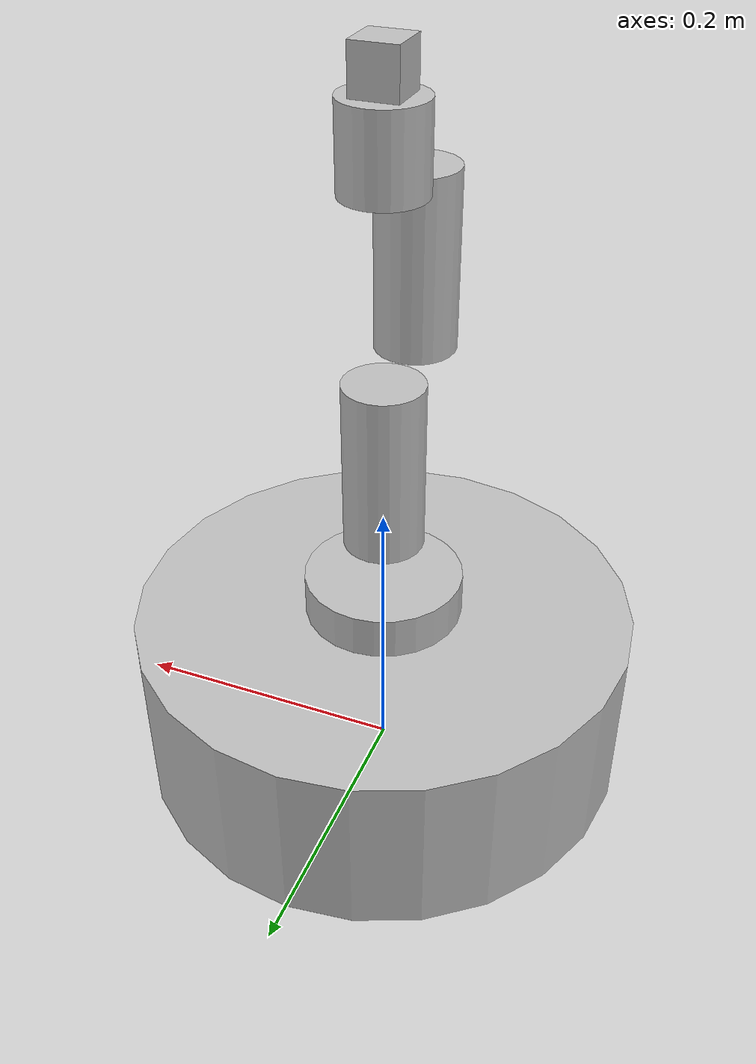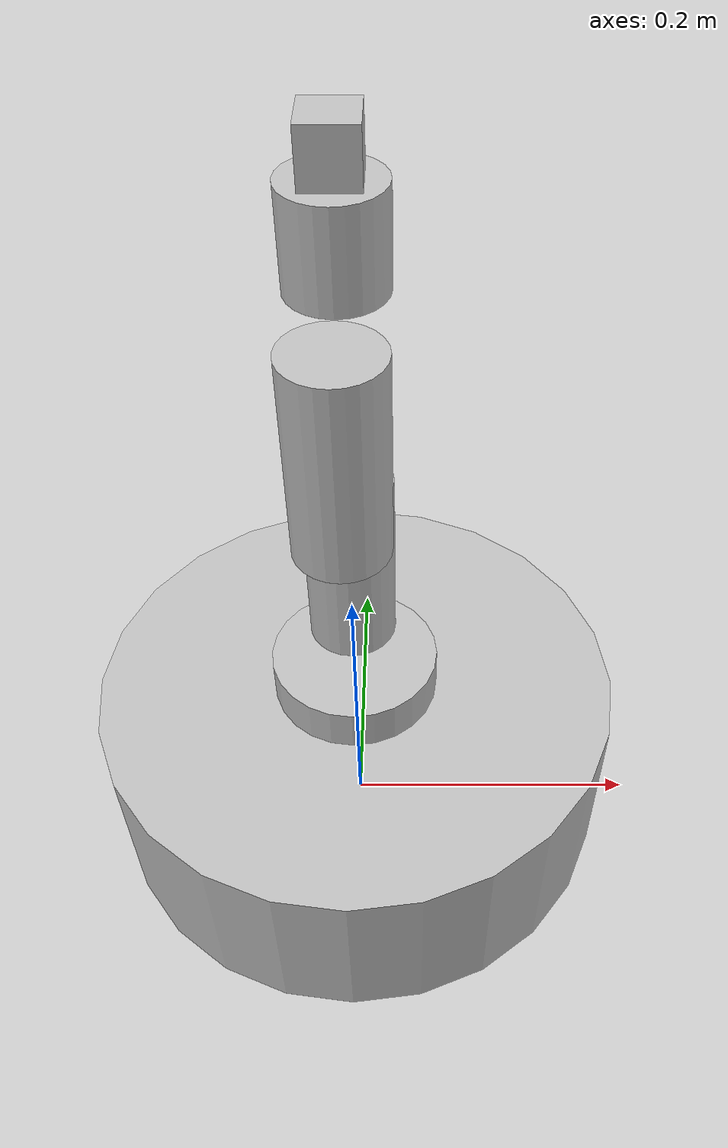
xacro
<?xml version="1.0"?>
<robot
	xmlns:xacro="http://www.ros.org/wiki/xacro"
	name="manipulator_model">

	<xacro:include filename="$(find manipulator_model)/xacro/inertia_macros.xacro" />
	<xacro:include filename="$(find manipulator_model)/xacro/transmission_macros.xacro" />

	<xacro:macro name="manipulator_model">
		<link name="world"/>
		<link name="rotate_moving_base">
			<inertial>
				<mass value="1.0"/>
				<origin rpy="0 0 0" xyz="0 0 0.0625"/>
				<xacro:cylinder_inertia mass="1" r="0.055" l="0.05" />
			</inertial>
		</link>
		<joint name="move_rotate" type="continuous">
			<axis xyz="0 0 1"/>
			<parent link="world"/>
			<child link="rotate_moving_base"/>
			<origin rpy="0 0 0" xyz="0.0 0.0 0.0"/>
		</joint>
		<link name="forward_moving_base">
			<inertial>
				<mass value="1.0"/>
				<origin rpy="0 0 0" xyz="0 0 0.0625"/>
				<xacro:cylinder_inertia mass="1" r="0.055" l="0.05" />
			</inertial>
		</link>
		<joint name="move_forward" type="prismatic">
			<axis xyz="1 0 0"/>
			<parent link="rotate_moving_base"/>
			<child link="forward_moving_base"/>
			<limit effort="1000.0" lower="-1" upper="1" velocity="0.5"/>
			<origin rpy="0 0 0" xyz="0.0 0.0 0.0"/>
		</joint>
		<joint name="fixed" type="fixed">
			<parent link="forward_moving_base"/>
			<child link="manipulator_base_link"/>
		</joint>
		<link name="manipulator_base_link">
			<visual>
				<geometry>
					<cylinder length="0.125" radius="0.175"/>
				</geometry>
				<material name="silver">
					<color rgba="0.75 0.75 0.75 1"/>
				</material>
				<origin rpy="0 0 0" xyz="0 0 0.0625"/>
			</visual>
			<collision>
				<geometry>
					<cylinder length="0.125" radius="0.175"/>
				</geometry>
				<origin rpy="0 0 0" xyz="0 0 0.0625"/>
			</collision>
			<inertial>
				<mass value="1.0"/>
				<origin rpy="0 0 0" xyz="0 0 0.0625"/>
				<xacro:cylinder_inertia mass="1" r="0.1" l="0.05" />
			</inertial>
		</link>
		<link name="turntable">
			<visual>
				<geometry>
					<cylinder length="0.03" radius="0.055"/>
				</geometry>
				<material name="silver">
					<color rgba="0.75 0.75 0.75 1"/>
				</material>
				<origin rpy="0 0 0" xyz="0 0 0.015"/>
			</visual>
			<collision>
				<geometry>
					<cylinder length="0.03" radius="0.055"/>
				</geometry>
				<origin rpy="0 0 0" xyz="0 0 0.015"/>
			</collision>
			<inertial>
				<mass value="1.0"/>
				<origin rpy="0 0 0" xyz="0 0 0.015"/>
				<xacro:cylinder_inertia mass="1" r="0.055" l="0.03" />
			</inertial>
		</link>
		<joint name="turn" type="continuous">
			<axis xyz="0 0 1"/>
			<parent link="manipulator_base_link"/>
			<child link="turntable"/>
			<origin rpy="0 0 0" xyz="0.0 0.0 0.125"/>
		</joint>
		<link name="upper_arm">
			<visual>
				<geometry>
					<cylinder length="0.12" radius="0.0275"/>
				</geometry>
				<material name="silver"/>
				<origin rpy="-1.5708 0 0" xyz="0 0.06 0"/>
			</visual>
			<collision>
				<geometry>
					<cylinder length="0.12" radius="0.0275"/>
				</geometry>
				<origin rpy="-1.5708 0 0" xyz="0 0.06 0"/>
			</collision>
			<inertial>
				<mass value="1.0"/>
				<origin rpy="-1.5708 0 0" xyz="0 0.06 0"/>
				<xacro:cylinder_inertia mass="1" r="0.0275" l="0.12" />
			</inertial>
		</link>
		<joint name="shoulder" type="continuous">
			<axis xyz="0 0 1"/>
			<parent link="turntable"/>
			<child link="upper_arm"/>
			<origin rpy="1.5708 0 0" xyz="0.0 0.0 0.0575"/>
		</joint>
		<link name="middle_arm">
			<visual>
				<geometry>
					<cylinder length="0.12" radius="0.0275"/>
				</geometry>
				<material name="silver"/>
				<origin rpy="-1.5708 0 0" xyz="0 0.06 0.0555"/>
			</visual>
			<collision>
				<geometry>
					<cylinder length="0.12" radius="0.0275"/>
				</geometry>
				<origin rpy="-1.5708 0 0" xyz="0 0.06 0.0555"/>
			</collision>
			<inertial>
				<mass value="1.0"/>
				<origin rpy="-1.5708 0 0" xyz="0 0.06 0.0555"/>
				<xacro:cylinder_inertia mass="1" r="0.0275" l="0.12" />
			</inertial>
		</link>
		<joint name="elbow" type="continuous">
			<axis xyz="0 0 1"/>
			<parent link="upper_arm"/>
			<child link="middle_arm"/>
			<origin rpy="0 0 0" xyz="0 0.12 0"/>
		</joint>
		<link name="lower_arm">
			<visual>
				<geometry>
					<cylinder length="0.055" radius="0.0275"/>
				</geometry>
				<material name="silver"/>
				<origin rpy="-1.5708 0 0" xyz="0 0.0275 0"/>
			</visual>
			<collision>
				<geometry>
					<cylinder length="0.055" radius="0.0275"/>
				</geometry>
				<origin rpy="-1.5708 0 0" xyz="0 0.0275 0"/>
			</collision>
			<inertial>
				<mass value="1.0"/>
				<origin rpy="-1.5708 0 0" xyz="0 0.0275 0"/>
				<xacro:cylinder_inertia mass="1" r="0.0275" l="0.055" />
			</inertial>
		</link>
		<joint name="another_elbow" type="continuous">
			<axis xyz="0 0 1"/>
			<parent link="middle_arm"/>
			<child link="lower_arm"/>
			<origin rpy="0 0 0" xyz="0 0.12 0"/>
		</joint>
		<link name="hand">
			<visual>
				<geometry>
					<box size="0.03 0.03 0.03"/>
				</geometry>
				<material name="silver"/>
				<origin rpy="0 0 0" xyz="0 0 0.015"/>
			</visual>
			<collision>
				<geometry>
					<box size="0.03 0.03 0.03"/>
				</geometry>
				<origin rpy="0 0 0" xyz="0 0 0.015"/>
			</collision>
			<inertial>
				<mass value="1.0"/>
				<origin rpy="0 0 0" xyz="0 0 0.015"/>
				<xacro:box_inertia mass="1" x="0.03" y="0.03" z="0.03" />
			</inertial>
		</link>
		<joint name="wrist" type="fixed">
			<parent link="lower_arm"/>
			<child link="hand"/>
			<origin rpy="-1.5708 0 0" xyz="0.0 0.055 0.0"/>
		</joint>

		<!--Transmission Descriptions-->
		<xacro:effort_transmission name="tran0" joint="turn" actuator="motor0"/>
		<xacro:effort_transmission name="tran1" joint="shoulder" actuator="motor1"/>
		<xacro:effort_transmission name="tran2" joint="elbow" actuator="motor2"/>
		<xacro:effort_transmission name="tran3" joint="another_elbow" actuator="motor3"/>
		<xacro:effort_transmission name="tran4" joint="move_rotate" actuator="motor4"/>
		<xacro:effort_transmission name="tran5" joint="move_forward" actuator="motor5"/>

		<!-- Gazebo Plugins -->
		<gazebo>
			<!-- ros_control plugin -->
			<plugin name="control" filename="libgazebo_ros_control.so"/>
			<!-- joint_state_publisher plugin -->
			<plugin name="joint_state_publisher" filename="libgazebo_ros_joint_state_publisher.so">
					<jointName>turn, shoulder, elbow, another_elbow, move_rotate, move_forward</jointName>
			</plugin>
		</gazebo>
	</xacro:macro>

	<xacro:manipulator_model/>
</robot>
